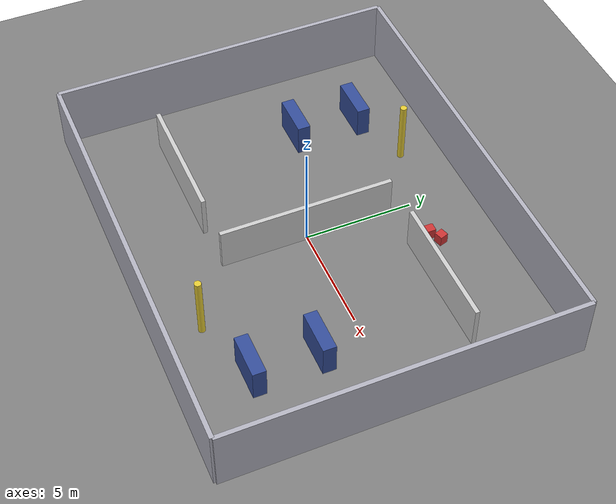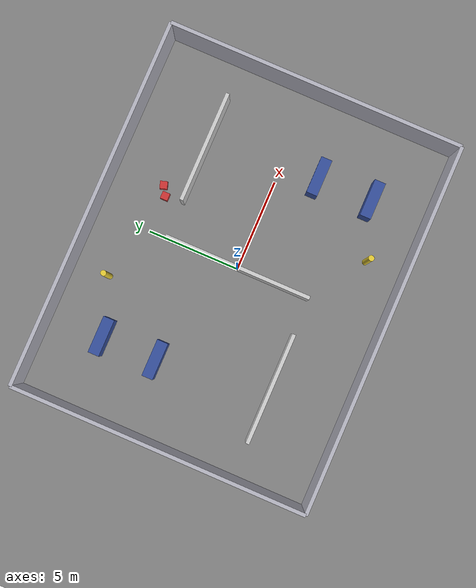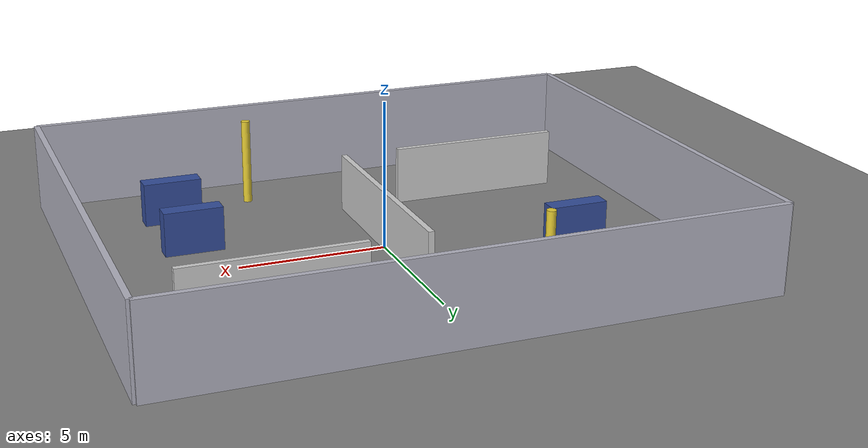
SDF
<?xml version="1.0" ?>
<sdf version="1.6">
  <world name="factory_world">

    <physics name="1ms" type="ignored">
      <max_step_size>0.001</max_step_size>
      <real_time_factor>1.0</real_time_factor>
    </physics>

    <plugin name="ignition::gazebo::systems::Physics" filename="libignition-gazebo-physics-system.so"/>
    <plugin name="ignition::gazebo::systems::SceneBroadcaster" filename="libignition-gazebo-scene-broadcaster-system.so"/>
    <plugin name="ignition::gazebo::systems::Contact" filename="libignition-gazebo-contact-system.so"/>
    <plugin name="ignition::gazebo::systems::Imu" filename="libignition-gazebo-imu-system.so"/>
    <plugin name="ignition::gazebo::systems::Sensors" filename="libignition-gazebo-sensors-system.so">
      <render_engine>ogre2</render_engine>
    </plugin>
    <plugin name="ignition::gazebo::systems::UserCommands" filename="libignition-gazebo-user-commands-system.so"/>
    <plugin name="ignition::gazebo::systems::WindEffects" filename="libignition-gazebo-wind-effects-system.so"/>

    <scene>
      <ambient>0.6 0.6 0.6 1.0</ambient>
      <background>0.3 0.3 0.3 1.0</background>
      <shadows>false</shadows>
    </scene>

    <spherical_coordinates>
      <surface_model>EARTH_WGS84</surface_model>
      <latitude_deg>0</latitude_deg>
      <longitude_deg>0</longitude_deg>
      <elevation>0</elevation>
      <heading_deg>0</heading_deg>
    </spherical_coordinates>

    <!-- ================== 光照 ================== -->
    <light type="directional" name="sun">
      <pose>0 0 10 0 0 0</pose>
      <cast_shadows>false</cast_shadows>
      <intensity>0.8</intensity>
      <direction>0.5 0.5 -1</direction>
      <diffuse>0.8 0.8 0.8 1</diffuse>
      <specular>0.2 0.2 0.2 1</specular>
    </light>

    <light type="point" name="factory_light_1">
      <pose>0 0 5 0 0 0</pose>
      <intensity>0.6</intensity>
      <diffuse>0.9 0.9 0.9 1</diffuse>
      <specular>0.1 0.1 0.1 1</specular>
      <attenuation>
        <range>20</range>
        <constant>0.5</constant>
        <linear>0.01</linear>
        <quadratic>0.001</quadratic>
      </attenuation>
    </light>

    <!-- ================== 地面 ================== -->
    <model name="ground_plane">
      <static>true</static>
      <link name="link">
        <collision name="collision">
          <geometry>
            <plane>
              <normal>0 0 1</normal>
              <size>50 50</size>
            </plane>
          </geometry>
        </collision>
        <visual name="visual">
          <geometry>
            <plane>
              <normal>0 0 1</normal>
              <size>50 50</size>
            </plane>
          </geometry>
          <material>
            <ambient>0.5 0.5 0.5 1</ambient>
            <diffuse>0.5 0.5 0.5 1</diffuse>
            <specular>0.1 0.1 0.1 1</specular>
          </material>
        </visual>
      </link>
    </model>

    <!-- ================== 墙壁（外围矩形厂房） ================== -->
    <!-- 北墙 -->
    <model name="wall_north">
      <static>true</static>
      <pose>0 8 1.5 0 0 0</pose>
      <link name="link">
        <collision name="collision"><geometry><box><size>20 0.2 3</size></box></geometry></collision>
        <visual name="visual">
          <geometry><box><size>20 0.2 3</size></box></geometry>
          <material><ambient>0.7 0.7 0.75 1</ambient><diffuse>0.7 0.7 0.75 1</diffuse></material>
        </visual>
      </link>
    </model>

    <!-- 南墙 -->
    <model name="wall_south">
      <static>true</static>
      <pose>0 -8 1.5 0 0 0</pose>
      <link name="link">
        <collision name="collision"><geometry><box><size>20 0.2 3</size></box></geometry></collision>
        <visual name="visual">
          <geometry><box><size>20 0.2 3</size></box></geometry>
          <material><ambient>0.7 0.7 0.75 1</ambient><diffuse>0.7 0.7 0.75 1</diffuse></material>
        </visual>
      </link>
    </model>

    <!-- 东墙 -->
    <model name="wall_east">
      <static>true</static>
      <pose>10 0 1.5 0 0 0</pose>
      <link name="link">
        <collision name="collision"><geometry><box><size>0.2 16 3</size></box></geometry></collision>
        <visual name="visual">
          <geometry><box><size>0.2 16 3</size></box></geometry>
          <material><ambient>0.7 0.7 0.75 1</ambient><diffuse>0.7 0.7 0.75 1</diffuse></material>
        </visual>
      </link>
    </model>

    <!-- 西墙 -->
    <model name="wall_west">
      <static>true</static>
      <pose>-10 0 1.5 0 0 0</pose>
      <link name="link">
        <collision name="collision"><geometry><box><size>0.2 16 3</size></box></geometry></collision>
        <visual name="visual">
          <geometry><box><size>0.2 16 3</size></box></geometry>
          <material><ambient>0.7 0.7 0.75 1</ambient><diffuse>0.7 0.7 0.75 1</diffuse></material>
        </visual>
      </link>
    </model>

    <!-- ================== 内部隔断墙（形成通道） ================== -->
    <!-- 中央纵向隔断 -->
    <model name="wall_center_long">
      <static>true</static>
      <pose>0 0 1.0 0 0 0</pose>
      <link name="link">
        <collision name="collision"><geometry><box><size>0.2 8 2</size></box></geometry></collision>
        <visual name="visual">
          <geometry><box><size>0.2 8 2</size></box></geometry>
          <material><ambient>0.8 0.8 0.8 1</ambient><diffuse>0.8 0.8 0.8 1</diffuse></material>
        </visual>
      </link>
    </model>

    <!-- 东侧横向短墙 -->
    <model name="wall_divider_east">
      <static>true</static>
      <pose>5 4 1.0 0 0 0</pose>
      <link name="link">
        <collision name="collision"><geometry><box><size>6 0.2 2</size></box></geometry></collision>
        <visual name="visual">
          <geometry><box><size>6 0.2 2</size></box></geometry>
          <material><ambient>0.8 0.8 0.8 1</ambient><diffuse>0.8 0.8 0.8 1</diffuse></material>
        </visual>
      </link>
    </model>

    <!-- 西侧横向短墙 -->
    <model name="wall_divider_west">
      <static>true</static>
      <pose>-5 -4 1.0 0 0 0</pose>
      <link name="link">
        <collision name="collision"><geometry><box><size>6 0.2 2</size></box></geometry></collision>
        <visual name="visual">
          <geometry><box><size>6 0.2 2</size></box></geometry>
          <material><ambient>0.8 0.8 0.8 1</ambient><diffuse>0.8 0.8 0.8 1</diffuse></material>
        </visual>
      </link>
    </model>

    <!-- ================== 货架（蓝色长方体） ================== -->
    <model name="shelf_1">
      <static>true</static>
      <pose>-6 5 0.75 0 0 0</pose>
      <link name="link">
        <collision name="collision"><geometry><box><size>2 0.6 1.5</size></box></geometry></collision>
        <visual name="visual">
          <geometry><box><size>2 0.6 1.5</size></box></geometry>
          <material><ambient>0.2 0.3 0.6 1</ambient><diffuse>0.2 0.3 0.6 1</diffuse></material>
        </visual>
      </link>
    </model>

    <model name="shelf_2">
      <static>true</static>
      <pose>-6 2 0.75 0 0 0</pose>
      <link name="link">
        <collision name="collision"><geometry><box><size>2 0.6 1.5</size></box></geometry></collision>
        <visual name="visual">
          <geometry><box><size>2 0.6 1.5</size></box></geometry>
          <material><ambient>0.2 0.3 0.6 1</ambient><diffuse>0.2 0.3 0.6 1</diffuse></material>
        </visual>
      </link>
    </model>

    <model name="shelf_3">
      <static>true</static>
      <pose>6 -5 0.75 0 0 0</pose>
      <link name="link">
        <collision name="collision"><geometry><box><size>2 0.6 1.5</size></box></geometry></collision>
        <visual name="visual">
          <geometry><box><size>2 0.6 1.5</size></box></geometry>
          <material><ambient>0.2 0.3 0.6 1</ambient><diffuse>0.2 0.3 0.6 1</diffuse></material>
        </visual>
      </link>
    </model>

    <model name="shelf_4">
      <static>true</static>
      <pose>6 -2 0.75 0 0 0</pose>
      <link name="link">
        <collision name="collision"><geometry><box><size>2 0.6 1.5</size></box></geometry></collision>
        <visual name="visual">
          <geometry><box><size>2 0.6 1.5</size></box></geometry>
          <material><ambient>0.2 0.3 0.6 1</ambient><diffuse>0.2 0.3 0.6 1</diffuse></material>
        </visual>
      </link>
    </model>

    <!-- ================== 立柱（黄色圆柱） ================== -->
    <model name="pillar_1">
      <static>true</static>
      <pose>-3 6 1.5 0 0 0</pose>
      <link name="link">
        <collision name="collision"><geometry><cylinder><radius>0.15</radius><length>3</length></cylinder></geometry></collision>
        <visual name="visual">
          <geometry><cylinder><radius>0.15</radius><length>3</length></cylinder></geometry>
          <material><ambient>0.9 0.8 0.2 1</ambient><diffuse>0.9 0.8 0.2 1</diffuse></material>
        </visual>
      </link>
    </model>

    <model name="pillar_2">
      <static>true</static>
      <pose>3 -6 1.5 0 0 0</pose>
      <link name="link">
        <collision name="collision"><geometry><cylinder><radius>0.15</radius><length>3</length></cylinder></geometry></collision>
        <visual name="visual">
          <geometry><cylinder><radius>0.15</radius><length>3</length></cylinder></geometry>
          <material><ambient>0.9 0.8 0.2 1</ambient><diffuse>0.9 0.8 0.2 1</diffuse></material>
        </visual>
      </link>
    </model>

    <!-- ================== 货物箱（红色小方块，供后续 YOLO/抓取使用） ================== -->
    <model name="cargo_box_1">
      <static>true</static>
      <pose>2 5 0.25 0 0 0</pose>
      <link name="link">
        <collision name="collision"><geometry><box><size>0.4 0.4 0.5</size></box></geometry></collision>
        <visual name="visual">
          <geometry><box><size>0.4 0.4 0.5</size></box></geometry>
          <material><ambient>0.8 0.2 0.2 1</ambient><diffuse>0.8 0.2 0.2 1</diffuse></material>
        </visual>
      </link>
    </model>

    <model name="cargo_box_2">
      <static>true</static>
      <pose>2.5 5.3 0.25 0 0 0.3</pose>
      <link name="link">
        <collision name="collision"><geometry><box><size>0.4 0.4 0.5</size></box></geometry></collision>
        <visual name="visual">
          <geometry><box><size>0.4 0.4 0.5</size></box></geometry>
          <material><ambient>0.8 0.2 0.2 1</ambient><diffuse>0.8 0.2 0.2 1</diffuse></material>
        </visual>
      </link>
    </model>

  </world>
</sdf>
